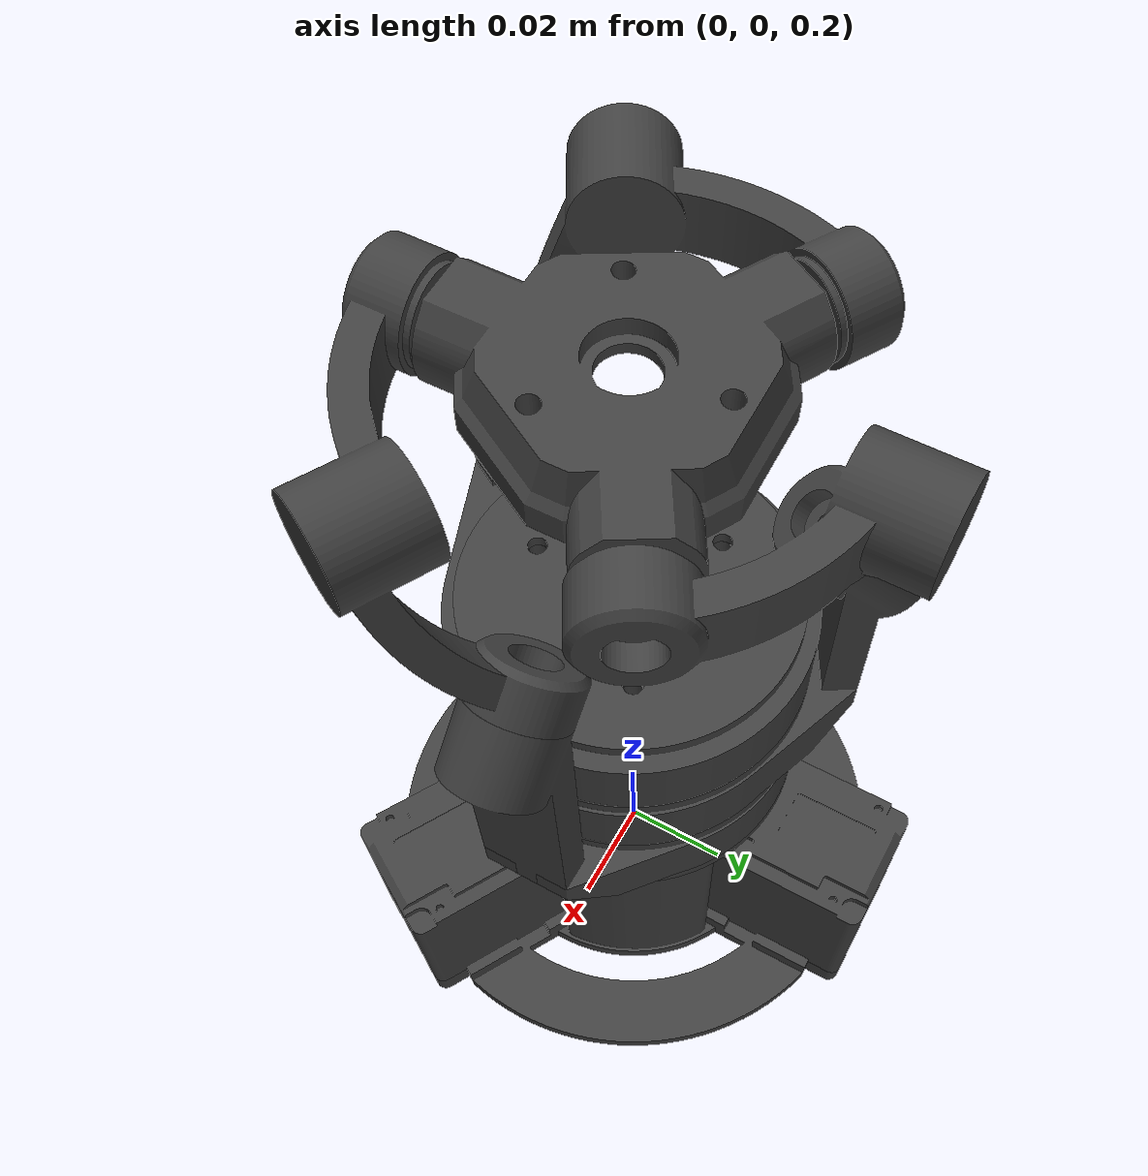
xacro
<?xml version="1.0"?>
<robot xmlns:xacro="http://www.ros.org/wiki/xacro" name="spm_wrist">
<xacro:property name="PI" value="3.14159265"/>

    <xacro:include filename="$(find spm_wrist_description)/urdf/materials.xacro" />
    <xacro:include filename="$(find spm_wrist_description)/urdf/spm.xacro"/>
    <xacro:include filename="$(find spm_wrist_description)/urdf/gazebo_closed_loop_joints.xacro"/>

    <link name="world"/>

    <joint name="world_joint" type="fixed">
        <parent link="world"/>
        <child link="base_link"/>
        <origin xyz="0.0 0.0 0.20" rpy="${PI/2} 0.0 0.0"/>
    </joint>

</robot>

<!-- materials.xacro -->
<robot name="smp" xmlns:xacro="http://www.ros.org/wiki/xacro" >

<material name="silver_default">
  <color rgba="0.700 0.700 0.700 1.000"/>
</material>
<material name="epx_150_air_baked_with_carbon_m2_m3_l1_3d_printers">
  <color rgba="0.24705882352941178 0.24705882352941178 0.24705882352941178 1.0"/>
</material>
<material name="nylon_12_with_formlabs_fuse_1_3d_printer">
  <color rgba="0.24705882352941178 0.24705882352941178 0.24705882352941178 1.0"/>
</material>
<material name="steel_satin">
  <color rgba="0.6274509803921569 0.6274509803921569 0.6274509803921569 1.0"/>
</material>
<material name="printed_polymide_pa12cf">
  <color rgba="0.24705882352941178 0.24705882352941178 0.24705882352941178 1.0"/>
</material>

</robot>

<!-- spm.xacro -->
<robot name="smp" xmlns:xacro="http://www.ros.org/wiki/xacro">
<link name="base_link">
  <inertial>
    <origin xyz="1.4144943148930138e-06 0.007917232444087631 -6.354750979618071e-06" rpy="0 0 0"/>
    <mass value="0.046353737838188414"/>
    <inertia ixx="2.9e-05" iyy="4.2e-05" izz="2.9e-05" ixy="0.0" iyz="-0.0" ixz="0.0"/>
  </inertial>
  <visual>
    <origin xyz="0 0 0" rpy="0 0 0"/>
    <geometry>
      <mesh filename="package://spm_wrist_description/meshes/base_link.stl" scale="0.001 0.001 0.001"/>
    </geometry>
    <material name="epx_150_air_baked_with_carbon_m2_m3_l1_3d_printers"/>
  </visual>
  <collision>
    <origin xyz="0 0 0" rpy="0 0 0"/>
    <geometry>
      <mesh filename="package://spm_wrist_description/meshes/base_link.stl" scale="0.001 0.001 0.001"/>
    </geometry>
  </collision>
</link>

<link name="ServoMotor1">
  <inertial>
    <origin xyz="0.011948473139161964 0.016078734989187438 -0.018863335082905573" rpy="0 0 0"/>
    <mass value="0.039200496616158965"/>
    <inertia ixx="6e-06" iyy="9e-06" izz="9e-06" ixy="-0.0" iyz="0.0" ixz="2e-06"/>
  </inertial>
  <visual>
    <origin xyz="0.039051 -0.0015 -0.034511" rpy="0 0 0"/>
    <geometry>
      <mesh filename="package://spm_wrist_description/meshes/servo_motor_v2_1.stl" scale="0.001 0.001 0.001"/>
    </geometry>
    <material name="nylon_12_with_formlabs_fuse_1_3d_printer"/>
  </visual>
  <collision>
    <origin xyz="0.039051 -0.0015 -0.034511" rpy="0 0 0"/>
    <geometry>
      <mesh filename="package://spm_wrist_description/meshes/servo_motor_v2_1.stl" scale="0.001 0.001 0.001"/>
    </geometry>
  </collision>
</link>

<link name="ServoMotor2">
  <inertial>
    <origin xyz="-0.022309461241470315 0.016078734989208664 -0.0009163556903109618" rpy="0 0 0"/>
    <mass value="0.039200496616158965"/>
    <inertia ixx="6e-06" iyy="9e-06" izz="9e-06" ixy="0.0" iyz="0.0" ixz="-2e-06"/>
  </inertial>
  <visual>
    <origin xyz="-0.049412 -0.0015 -0.016564" rpy="0 0 0"/>
    <geometry>
      <mesh filename="package://spm_wrist_description/meshes/servo_motor_v2_2.stl" scale="0.001 0.001 0.001"/>
    </geometry>
    <material name="nylon_12_with_formlabs_fuse_1_3d_printer"/>
  </visual>
  <collision>
    <origin xyz="-0.049412 -0.0015 -0.016564" rpy="0 0 0"/>
    <geometry>
      <mesh filename="package://spm_wrist_description/meshes/servo_motor_v2_2.stl" scale="0.001 0.001 0.001"/>
    </geometry>
  </collision>
</link>

<link name="ServoMotor3">
  <inertial>
    <origin xyz="0.010361988102308841 0.0160787349892087 0.019778690773216326" rpy="0 0 0"/>
    <mass value="0.039200496616158965"/>
    <inertia ixx="1e-05" iyy="9e-06" izz="5e-06" ixy="-0.0" iyz="-0.0" ixz="-0.0"/>
  </inertial>
  <visual>
    <origin xyz="0.010362 -0.0015 0.051074" rpy="0 0 0"/>
    <geometry>
      <mesh filename="package://spm_wrist_description/meshes/servo_motor_v2_3.stl" scale="0.001 0.001 0.001"/>
    </geometry>
    <material name="nylon_12_with_formlabs_fuse_1_3d_printer"/>
  </visual>
  <collision>
    <origin xyz="0.010362 -0.0015 0.051074" rpy="0 0 0"/>
    <geometry>
      <mesh filename="package://spm_wrist_description/meshes/servo_motor_v2_3.stl" scale="0.001 0.001 0.001"/>
    </geometry>
  </collision>
</link>

<link name="AxisConnector1">
  <inertial>
    <origin xyz="1.6013453995114557e-08 0.0024852853726477706 2.515422694148589e-07" rpy="0 0 0"/>
    <mass value="0.004090743480523257"/>
    <inertia ixx="8.4649e-08" iyy="1.5336e-07" izz="8.4649e-08" ixy="0.0" iyz="0.0" ixz="0.0"/>
  </inertial>
  <visual>
    <origin xyz="0.015556 -0.0352 -0.008981" rpy="0 0 0"/>
    <geometry>
      <mesh filename="package://spm_wrist_description/meshes/AxisConnector_v3_1.stl" scale="0.001 0.001 0.001"/>
    </geometry>
    <material name="steel_satin"/>
  </visual>
  <collision>
    <origin xyz="0.015556 -0.0352 -0.008981" rpy="0 0 0"/>
    <geometry>
      <mesh filename="package://spm_wrist_description/meshes/AxisConnector_v3_1.stl" scale="0.001 0.001 0.001"/>
    </geometry>
  </collision>
</link>

<link name="AxisConnector2">
  <inertial>
    <origin xyz="-1.6013119337465742e-08 0.0024852853726689966 2.5154246256937907e-07" rpy="0 0 0"/>
    <mass value="0.004090743480523257"/>
    <inertia ixx="8.4649e-08" iyy="1.5336e-07" izz="8.4649e-08" ixy="0.0" iyz="0.0" ixz="0.0"/>
  </inertial>
  <visual>
    <origin xyz="-0.015556 -0.0352 -0.008981" rpy="0 0 0"/>
    <geometry>
      <mesh filename="package://spm_wrist_description/meshes/AxisConnector_v3_2.stl" scale="0.001 0.001 0.001"/>
    </geometry>
    <material name="steel_satin"/>
  </visual>
  <collision>
    <origin xyz="-0.015556 -0.0352 -0.008981" rpy="0 0 0"/>
    <geometry>
      <mesh filename="package://spm_wrist_description/meshes/AxisConnector_v3_2.stl" scale="0.001 0.001 0.001"/>
    </geometry>
  </collision>
</link>

<link name="AxisConnector3">
  <inertial>
    <origin xyz="-1.0994205545955537e-13 0.0024852853726690244 4.969156521712759e-07" rpy="0 0 0"/>
    <mass value="0.004090743480523257"/>
    <inertia ixx="8.4649e-08" iyy="1.5336e-07" izz="8.4649e-08" ixy="0.0" iyz="0.0" ixz="0.0"/>
  </inertial>
  <visual>
    <origin xyz="-0.0 -0.0352 0.017963" rpy="0 0 0"/>
    <geometry>
      <mesh filename="package://spm_wrist_description/meshes/AxisConnector_v3_3.stl" scale="0.001 0.001 0.001"/>
    </geometry>
    <material name="steel_satin"/>
  </visual>
  <collision>
    <origin xyz="-0.0 -0.0352 0.017963" rpy="0 0 0"/>
    <geometry>
      <mesh filename="package://spm_wrist_description/meshes/AxisConnector_v3_3.stl" scale="0.001 0.001 0.001"/>
    </geometry>
  </collision>
</link>

<link name="LngSpur">
  <inertial>
    <origin xyz="1.6013355952013142e-08 0.023811024494842743 2.515424875615402e-07" rpy="0 0 0"/>
    <mass value="0.002241786298874095"/>
    <inertia ixx="0.0" iyy="0.0" izz="0.0" ixy="-0.0" iyz="-0.0" ixz="-0.0"/>
  </inertial>
  <visual>
    <origin xyz="0.015556 -0.0382 -0.008981" rpy="0 0 0"/>
    <geometry>
      <mesh filename="package://spm_wrist_description/meshes/LngSpur_v2_1.stl" scale="0.001 0.001 0.001"/>
    </geometry>
    <material name="epx_150_air_baked_with_carbon_m2_m3_l1_3d_printers"/>
  </visual>
  <collision>
    <origin xyz="0.015556 -0.0382 -0.008981" rpy="0 0 0"/>
    <geometry>
      <mesh filename="package://spm_wrist_description/meshes/LngSpur_v2_1.stl" scale="0.001 0.001 0.001"/>
    </geometry>
  </collision>
</link>

<link name="MidSpur">
  <inertial>
    <origin xyz="-0.003099851187174882 0.021909865513360466 -5.61942304570795e-07" rpy="0 0 0"/>
    <mass value="0.0022422400558409607"/>
    <inertia ixx="0.0" iyy="0.0" izz="0.0" ixy="-0.0" iyz="0.0" ixz="0.0"/>
  </inertial>
  <visual>
    <origin xyz="-0.003 -0.0382 0.017963" rpy="0 0 0"/>
    <geometry>
      <mesh filename="package://spm_wrist_description/meshes/MidSpur_v2_1.stl" scale="0.001 0.001 0.001"/>
    </geometry>
    <material name="epx_150_air_baked_with_carbon_m2_m3_l1_3d_printers"/>
  </visual>
  <collision>
    <origin xyz="-0.003 -0.0382 0.017963" rpy="0 0 0"/>
    <geometry>
      <mesh filename="package://spm_wrist_description/meshes/MidSpur_v2_1.stl" scale="0.001 0.001 0.001"/>
    </geometry>
  </collision>
</link>

<link name="SrtSpur">
  <inertial>
    <origin xyz="-0.0031000160130173603 0.020004935604028537 2.515421796325107e-07" rpy="0 0 0"/>
    <mass value="0.0022417862988739273"/>
    <inertia ixx="0.0" iyy="0.0" izz="0.0" ixy="0.0" iyz="0.0" ixz="0.0"/>
  </inertial>
  <visual>
    <origin xyz="-0.018556 -0.0382 -0.008981" rpy="0 0 0"/>
    <geometry>
      <mesh filename="package://spm_wrist_description/meshes/SrtSpur_v2_1.stl" scale="0.001 0.001 0.001"/>
    </geometry>
    <material name="epx_150_air_baked_with_carbon_m2_m3_l1_3d_printers"/>
  </visual>
  <collision>
    <origin xyz="-0.018556 -0.0382 -0.008981" rpy="0 0 0"/>
    <geometry>
      <mesh filename="package://spm_wrist_description/meshes/SrtSpur_v2_1.stl" scale="0.001 0.001 0.001"/>
    </geometry>
  </collision>
</link>

<link name="Bottom1">
  <inertial>
    <origin xyz="1.289708778125881e-08 0.006279746707014873 -5.8722048078617854e-09" rpy="0 0 0"/>
    <mass value="0.016848685557919317"/>
    <inertia ixx="3e-06" iyy="6e-06" izz="3e-06" ixy="0.0" iyz="-0.0" ixz="-0.0"/>
  </inertial>
  <visual>
    <origin xyz="-0.0 -0.0385 -0.0" rpy="0 0 0"/>
    <geometry>
      <mesh filename="package://spm_wrist_description/meshes/Bottom_v2_1.stl" scale="0.001 0.001 0.001"/>
    </geometry>
    <material name="epx_150_air_baked_with_carbon_m2_m3_l1_3d_printers"/>
  </visual>
  <collision>
    <origin xyz="-0.0 -0.0385 -0.0" rpy="0 0 0"/>
    <geometry>
      <mesh filename="package://spm_wrist_description/meshes/Bottom_v2_1.stl" scale="0.001 0.001 0.001"/>
    </geometry>
  </collision>
</link>

<link name="Bottom2">
  <inertial>
    <origin xyz="1.289708778125881e-08 0.022279746707014866 -5.8722048078617854e-09" rpy="0 0 0"/>
    <mass value="0.016848685557919317"/>
    <inertia ixx="3e-06" iyy="6e-06" izz="3e-06" ixy="0.0" iyz="-0.0" ixz="-0.0"/>
  </inertial>
  <visual>
    <origin xyz="-0.0 -0.0385 -0.0" rpy="0 0 0"/>
    <geometry>
      <mesh filename="package://spm_wrist_description/meshes/Bottom_v2_2.stl" scale="0.001 0.001 0.001"/>
    </geometry>
    <material name="epx_150_air_baked_with_carbon_m2_m3_l1_3d_printers"/>
  </visual>
  <collision>
    <origin xyz="-0.0 -0.0385 -0.0" rpy="0 0 0"/>
    <geometry>
      <mesh filename="package://spm_wrist_description/meshes/Bottom_v2_2.stl" scale="0.001 0.001 0.001"/>
    </geometry>
  </collision>
</link>

<link name="Bottom3">
  <inertial>
    <origin xyz="1.4260146814520231e-08 0.038279746707015776 -6.65916595122069e-09" rpy="0 0 0"/>
    <mass value="0.016848685557919317"/>
    <inertia ixx="3e-06" iyy="6e-06" izz="3e-06" ixy="0.0" iyz="-0.0" ixz="-0.0"/>
  </inertial>
  <visual>
    <origin xyz="-0.0 -0.0385 -0.0" rpy="0 0 0"/>
    <geometry>
      <mesh filename="package://spm_wrist_description/meshes/Bottom_v2_3.stl" scale="0.001 0.001 0.001"/>
    </geometry>
    <material name="epx_150_air_baked_with_carbon_m2_m3_l1_3d_printers"/>
  </visual>
  <collision>
    <origin xyz="-0.0 -0.0385 -0.0" rpy="0 0 0"/>
    <geometry>
      <mesh filename="package://spm_wrist_description/meshes/Bottom_v2_3.stl" scale="0.001 0.001 0.001"/>
    </geometry>
  </collision>
</link>

<link name="Ring1">
  <inertial>
    <origin xyz="0.005201501758024685 0.007609632754506879 4.973880009166959e-06" rpy="0 0 0"/>
    <mass value="0.010986111735110429"/>
    <inertia ixx="4e-06" iyy="9e-06" izz="5e-06" ixy="0.0" iyz="0.0" ixz="-0.0"/>
  </inertial>
  <visual>
    <origin xyz="0.0 -0.0405 -0.0" rpy="0 0 0"/>
    <geometry>
      <mesh filename="package://spm_wrist_description/meshes/Ring_v2_1.stl" scale="0.001 0.001 0.001"/>
    </geometry>
    <material name="epx_150_air_baked_with_carbon_m2_m3_l1_3d_printers"/>
  </visual>
  <collision>
    <origin xyz="0.0 -0.0405 -0.0" rpy="0 0 0"/>
    <geometry>
      <mesh filename="package://spm_wrist_description/meshes/Ring_v2_1.stl" scale="0.001 0.001 0.001"/>
    </geometry>
  </collision>
</link>

<link name="Ring2">
  <inertial>
    <origin xyz="-0.0025964447356298537 0.007609632754506872 -0.004507117239401916" rpy="0 0 0"/>
    <mass value="0.010986111735110429"/>
    <inertia ixx="5e-06" iyy="9e-06" izz="4e-06" ixy="-0.0" iyz="-0.0" ixz="-1e-06"/>
  </inertial>
  <visual>
    <origin xyz="0.0 -0.0565 -0.0" rpy="0 0 0"/>
    <geometry>
      <mesh filename="package://spm_wrist_description/meshes/Ring_v2_2.stl" scale="0.001 0.001 0.001"/>
    </geometry>
    <material name="epx_150_air_baked_with_carbon_m2_m3_l1_3d_printers"/>
  </visual>
  <collision>
    <origin xyz="0.0 -0.0565 -0.0" rpy="0 0 0"/>
    <geometry>
      <mesh filename="package://spm_wrist_description/meshes/Ring_v2_2.stl" scale="0.001 0.001 0.001"/>
    </geometry>
  </collision>
</link>

<link name="Ring3">
  <inertial>
    <origin xyz="-0.0026050556593440444 0.007609632754507795 0.0045021472942029135" rpy="0 0 0"/>
    <mass value="0.010986111735110429"/>
    <inertia ixx="5e-06" iyy="9e-06" izz="4e-06" ixy="-0.0" iyz="0.0" ixz="1e-06"/>
  </inertial>
  <visual>
    <origin xyz="-0.0 -0.0725 -0.0" rpy="0 0 0"/>
    <geometry>
      <mesh filename="package://spm_wrist_description/meshes/Ring_v2_3.stl" scale="0.001 0.001 0.001"/>
    </geometry>
    <material name="epx_150_air_baked_with_carbon_m2_m3_l1_3d_printers"/>
  </visual>
  <collision>
    <origin xyz="-0.0 -0.0725 -0.0" rpy="0 0 0"/>
    <geometry>
      <mesh filename="package://spm_wrist_description/meshes/Ring_v2_3.stl" scale="0.001 0.001 0.001"/>
    </geometry>
  </collision>
</link>

<link name="LongArm">
  <inertial>
    <origin xyz="0.00038460246617244565 0.02537308365506035 0.00500888165590829" rpy="0 0 0"/>
    <mass value="0.0051004386314811665"/>
    <inertia ixx="1e-06" iyy="0.0" izz="1e-06" ixy="-0.0" iyz="0.0" ixz="0.0"/>
  </inertial>
  <visual>
    <origin xyz="-0.03431 -0.053 0.00499" rpy="0 0 0"/>
    <geometry>
      <mesh filename="package://spm_wrist_description/meshes/LongArm_v2_1.stl" scale="0.001 0.001 0.001"/>
    </geometry>
    <material name="printed_polymide_pa12cf"/>
  </visual>
  <collision>
    <origin xyz="-0.03431 -0.053 0.00499" rpy="0 0 0"/>
    <geometry>
      <mesh filename="package://spm_wrist_description/meshes/LongArm_v2_1.stl" scale="0.001 0.001 0.001"/>
    </geometry>
  </collision>
</link>

<link name="MiddleArm">
  <inertial>
    <origin xyz="0.0040539394551962205 0.01736881870394401 -0.0029924213263613428" rpy="0 0 0"/>
    <mass value="0.003478285860946649"/>
    <inertia ixx="0.0" iyy="0.0" izz="0.0" ixy="0.0" iyz="0.0" ixz="0.0"/>
  </inertial>
  <visual>
    <origin xyz="0.021476 -0.069 0.027218" rpy="0 0 0"/>
    <geometry>
      <mesh filename="package://spm_wrist_description/meshes/MiddleArm_v2_1.stl" scale="0.001 0.001 0.001"/>
    </geometry>
    <material name="epx_150_air_baked_with_carbon_m2_m3_l1_3d_printers"/>
  </visual>
  <collision>
    <origin xyz="0.021476 -0.069 0.027218" rpy="0 0 0"/>
    <geometry>
      <mesh filename="package://spm_wrist_description/meshes/MiddleArm_v2_1.stl" scale="0.001 0.001 0.001"/>
    </geometry>
  </collision>
</link>

<link name="ShortArm">
  <inertial>
    <origin xyz="0.003816843793053231 0.009294845203876759 0.003387634092917313" rpy="0 0 0"/>
    <mass value="0.001981898490704533"/>
    <inertia ixx="0.0" iyy="0.0" izz="0.0" ixy="0.0" iyz="-0.0" ixz="-0.0"/>
  </inertial>
  <visual>
    <origin xyz="0.021494 -0.085 -0.027208" rpy="0 0 0"/>
    <geometry>
      <mesh filename="package://spm_wrist_description/meshes/ShortArm_v2_1.stl" scale="0.001 0.001 0.001"/>
    </geometry>
    <material name="epx_150_air_baked_with_carbon_m2_m3_l1_3d_printers"/>
  </visual>
  <collision>
    <origin xyz="0.021494 -0.085 -0.027208" rpy="0 0 0"/>
    <geometry>
      <mesh filename="package://spm_wrist_description/meshes/ShortArm_v2_1.stl" scale="0.001 0.001 0.001"/>
    </geometry>
  </collision>
</link>

<link name="PlatformSupportLink1">
  <inertial>
    <origin xyz="-0.00818592553194598 0.02354354691894711 0.01714252319173745" rpy="0 0 0"/>
    <mass value="0.010151333245456888"/>
    <inertia ixx="3e-06" iyy="3e-06" izz="4e-06" ixy="1e-06" iyz="-1e-06" ixz="1e-06"/>
  </inertial>
  <visual>
    <origin xyz="-0.031815 -0.101598 -0.0" rpy="0 0 0"/>
    <geometry>
      <mesh filename="package://spm_wrist_description/meshes/PlatformSupportLink_v2_1.stl" scale="0.001 0.001 0.001"/>
    </geometry>
    <material name="epx_150_air_baked_with_carbon_m2_m3_l1_3d_printers"/>
  </visual>
  <collision>
    <origin xyz="-0.031815 -0.101598 -0.0" rpy="0 0 0"/>
    <geometry>
      <mesh filename="package://spm_wrist_description/meshes/PlatformSupportLink_v2_1.stl" scale="0.001 0.001 0.001"/>
    </geometry>
  </collision>
</link>

<link name="PlatformSupportLink2">
  <inertial>
    <origin xyz="0.019526903785241048 0.023070907887856165 -0.0012751235405861032" rpy="0 0 0"/>
    <mass value="0.010151333245456888"/>
    <inertia ixx="2.757e-06" iyy="3.533e-06" izz="4.447e-06" ixy="-1.541e-06" iyz="1.0e-08" ixz="-8.53e-07"/>
  </inertial>
  <visual>
    <origin xyz="0.015908 -0.101598 0.027553" rpy="0 0 0"/>
    <geometry>
      <mesh filename="package://spm_wrist_description/meshes/PlatformSupportLink_v2_2.stl" scale="0.001 0.001 0.001"/>
    </geometry>
    <material name="epx_150_air_baked_with_carbon_m2_m3_l1_3d_printers"/>
  </visual>
  <collision>
    <origin xyz="0.015908 -0.101598 0.027553" rpy="0 0 0"/>
    <geometry>
      <mesh filename="package://spm_wrist_description/meshes/PlatformSupportLink_v2_2.stl" scale="0.001 0.001 0.001"/>
    </geometry>
  </collision>
</link>

<link name="PlatformSupportLink3">
  <inertial>
    <origin xyz="-0.010893843297945977 0.022943909773968235 -0.016434793066780543" rpy="0 0 0"/>
    <mass value="0.010151333245456888"/>
    <inertia ixx="4.758e-06" iyy="3.552e-06" izz="2.427e-06" ixy="7.7e-07" iyz="1.33e-06" ixz="-2.99e-07"/>
  </inertial>
  <visual>
    <origin xyz="0.015906 -0.101598 -0.027554" rpy="0 0 0"/>
    <geometry>
      <mesh filename="package://spm_wrist_description/meshes/PlatformSupportLink_v2_3.stl" scale="0.001 0.001 0.001"/>
    </geometry>
    <material name="epx_150_air_baked_with_carbon_m2_m3_l1_3d_printers"/>
  </visual>
  <collision>
    <origin xyz="0.015906 -0.101598 -0.027554" rpy="0 0 0"/>
    <geometry>
      <mesh filename="package://spm_wrist_description/meshes/PlatformSupportLink_v2_3.stl" scale="0.001 0.001 0.001"/>
    </geometry>
  </collision>
</link>

<link name="Platform">
  <inertial>
    <origin xyz="-0.0007498067553170075 0.0014759244320091403 -0.0275398582616901" rpy="0 0 0"/>
    <mass value="0.008694089397605359"/>
    <inertia ixx="2e-06" iyy="3e-06" izz="2e-06" ixy="-0.0" iyz="-0.0" ixz="0.0"/>
  </inertial>
  <visual>
    <origin xyz="-0.000885 -0.134013 -0.02748" rpy="0 0 0"/>
    <geometry>
      <mesh filename="package://spm_wrist_description/meshes/Platform_v2_1.stl" scale="0.001 0.001 0.001"/>
    </geometry>
    <material name="epx_150_air_baked_with_carbon_m2_m3_l1_3d_printers"/>
  </visual>
  <collision>
    <origin xyz="-0.000885 -0.134013 -0.02748" rpy="0 0 0"/>
    <geometry>
      <mesh filename="package://spm_wrist_description/meshes/Platform_v2_1.stl" scale="0.001 0.001 0.001"/>
    </geometry>
  </collision>
</link>

<link name="Top">
  <inertial>
    <origin xyz="1.3631331504828307e-09 0.0010000000000000425 -0.016999999213027802" rpy="0 0 0"/>
    <mass value="0.004660046355404222"/>
    <inertia ixx="1e-06" iyy="2e-06" izz="1e-06" ixy="-0.0" iyz="-0.0" ixz="0.0"/>
  </inertial>
  <visual>
    <origin xyz="-0.0 -0.0865 -0.017" rpy="0 0 0"/>
    <geometry>
      <mesh filename="package://spm_wrist_description/meshes/Top_v2_1.stl" scale="0.001 0.001 0.001"/>
    </geometry>
    <material name="epx_150_air_baked_with_carbon_m2_m3_l1_3d_printers"/>
  </visual>
  <collision>
    <origin xyz="-0.0 -0.0865 -0.017" rpy="0 0 0"/>
    <geometry>
      <mesh filename="package://spm_wrist_description/meshes/Top_v2_1.stl" scale="0.001 0.001 0.001"/>
    </geometry>
  </collision>
</link>

<joint name="Rigid1" type="fixed">
  <origin xyz="-0.039051 0.0015 0.034511" rpy="0 0 0"/>
  <parent link="base_link"/>
  <child link="ServoMotor1"/>
</joint>

<joint name="Rigid2" type="fixed">
  <origin xyz="0.049412 0.0015 0.016564" rpy="0 0 0"/>
  <parent link="base_link"/>
  <child link="ServoMotor2"/>
</joint>

<joint name="Rigid3" type="fixed">
  <origin xyz="-0.010362 0.0015 -0.051074" rpy="0 0 0"/>
  <parent link="base_link"/>
  <child link="ServoMotor3"/>
</joint>

<joint name="LngSpur_Joint" type="continuous">
  <origin xyz="0.023495 0.0337 -0.02553" rpy="0 0 0"/>
  <parent link="ServoMotor1"/>
  <child link="AxisConnector1"/>
  <axis xyz="-0.0 -1.0 -0.0"/>
</joint>

<joint name="SrtSpur_Joint" type="continuous">
  <origin xyz="-0.033856 0.0337 -0.007583" rpy="0 0 0"/>
  <parent link="ServoMotor2"/>
  <child link="AxisConnector2"/>
  <axis xyz="-0.0 1.0 0.0"/>
</joint>

<joint name="MidSpur_Joint" type="continuous">
  <origin xyz="0.010362 0.0337 0.033111" rpy="0 0 0"/>
  <parent link="ServoMotor3"/>
  <child link="AxisConnector3"/>
  <axis xyz="0.0 1.0 0.0"/>
</joint>

<joint name="Rigid7" type="fixed">
  <origin xyz="0.0 0.003 0.0" rpy="0 0 0"/>
  <parent link="AxisConnector1"/>
  <child link="LngSpur"/>
</joint>

<joint name="Rigid8" type="fixed">
  <origin xyz="0.003 0.003 0.0" rpy="0 0 0"/>
  <parent link="AxisConnector3"/>
  <child link="MidSpur"/>
</joint>

<joint name="Rigid9" type="fixed">
  <origin xyz="0.003 0.003 0.0" rpy="0 0 0"/>
  <parent link="AxisConnector2"/>
  <child link="SrtSpur"/>
</joint>

<joint name="Rigid10" type="fixed">
  <origin xyz="0.0 0.0385 0.0" rpy="0 0 0"/>
  <parent link="base_link"/>
  <child link="Bottom1"/>
</joint>

<joint name="Rigid11" type="fixed">
  <origin xyz="0.0 0.0385 0.0" rpy="0 0 0"/>
  <parent link="base_link"/>
  <child link="Bottom2"/>
</joint>

<joint name="Rigid12" type="fixed">
  <origin xyz="0.0 0.0385 0.0" rpy="0 0 0"/>
  <parent link="base_link"/>
  <child link="Bottom3"/>
</joint>

<joint name="Revolute13" type="continuous">
  <origin xyz="-0.0 0.002 0.0" rpy="0 0 0"/>
  <parent link="Bottom1"/>
  <child link="Ring1"/>
  <axis xyz="-0.0 1.0 -0.0"/>
  <mimic joint="LngSpur_Joint" multiplier="-0.4"/>
</joint>

<joint name="Revolute14" type="continuous">
  <origin xyz="-0.0 0.018 0.0" rpy="0 0 0"/>
  <parent link="Bottom2"/>
  <child link="Ring2"/>
  <axis xyz="0.0 1.0 0.0"/>
  <mimic joint="MidSpur_Joint" multiplier="-0.4"/>
</joint>

<joint name="Revolute15" type="continuous">
  <origin xyz="0.0 0.034 0.0" rpy="0 0 0"/>
  <parent link="Bottom3"/>
  <child link="Ring3"/>
  <axis xyz="0.0 1.0 0.0"/>
  <mimic joint="SrtSpur_Joint" multiplier="-0.4"/>
</joint>

<joint name="Rigid16" type="fixed">
  <origin xyz="0.03431 0.0125 -0.00499" rpy="0 0 0"/>
  <parent link="Ring1"/>
  <child link="LongArm"/>
</joint>

<joint name="Rigid17" type="fixed">
  <origin xyz="-0.021476 0.0125 -0.027218" rpy="0 0 0"/>
  <parent link="Ring2"/>
  <child link="MiddleArm"/>
</joint>

<joint name="Rigid18" type="fixed">
  <origin xyz="-0.021494 0.0125 0.027208" rpy="0 0 0"/>
  <parent link="Ring3"/>
  <child link="ShortArm"/>
</joint>

<joint name="PlatformSupportLink1_Joint" type="continuous">
  <origin xyz="-0.002495 0.048598 0.00499" rpy="0 0 0"/>
  <parent link="LongArm"/>
  <child link="PlatformSupportLink1"/>
  <axis xyz="-0.707107 0.707107 -0.0"/>
</joint>

<joint name="PlatformSupportLink2_Joint" type="continuous">
  <origin xyz="0.005568 0.032598 -0.000335" rpy="0 0 0"/>
  <parent link="MiddleArm"/>
  <child link="PlatformSupportLink2"/>
  <axis xyz="0.353553 0.707107 0.612372"/>
</joint>

<joint name="PlatformSupportLink3_Joint" type="continuous">
  <origin xyz="0.005588 0.016598 0.000346" rpy="0 0 0"/>
  <parent link="ShortArm"/>
  <child link="PlatformSupportLink3"/>
  <axis xyz="-0.353553 -0.707107 0.612372"/>
</joint>

<joint name="Platform_Joint1" type="continuous">
  <origin xyz="-0.03093 0.032415 0.02748" rpy="0 0 0"/>
  <parent link="PlatformSupportLink1"/>
  <child link="Platform"/>
  <axis xyz="-0.027239 -0.027239 -0.999258"/>
</joint>

<joint name="Rigid23" type="fixed">
  <origin xyz="0.0 0.048 0.017" rpy="0 0 0"/>
  <parent link="Bottom3"/>
  <child link="Top"/>
</joint>

</robot>
